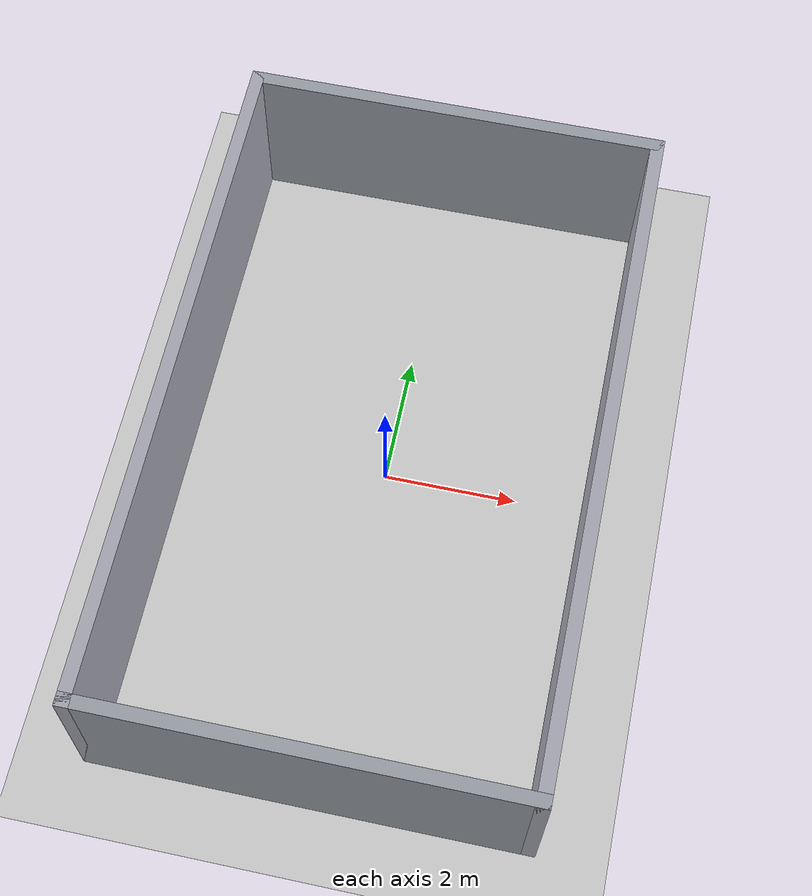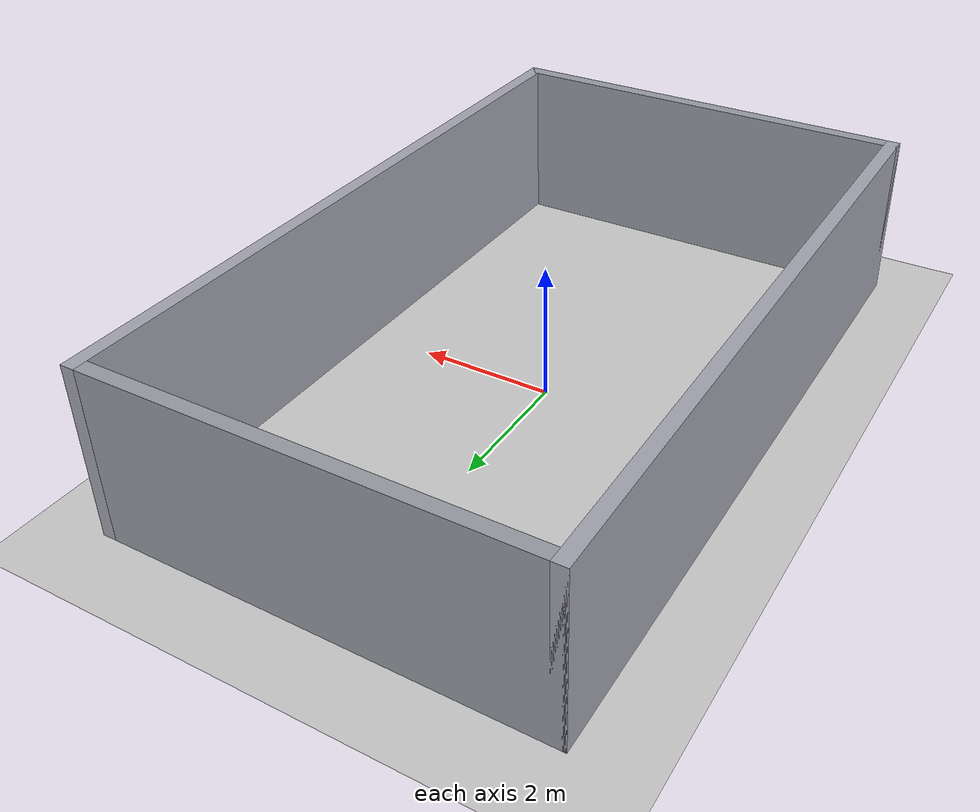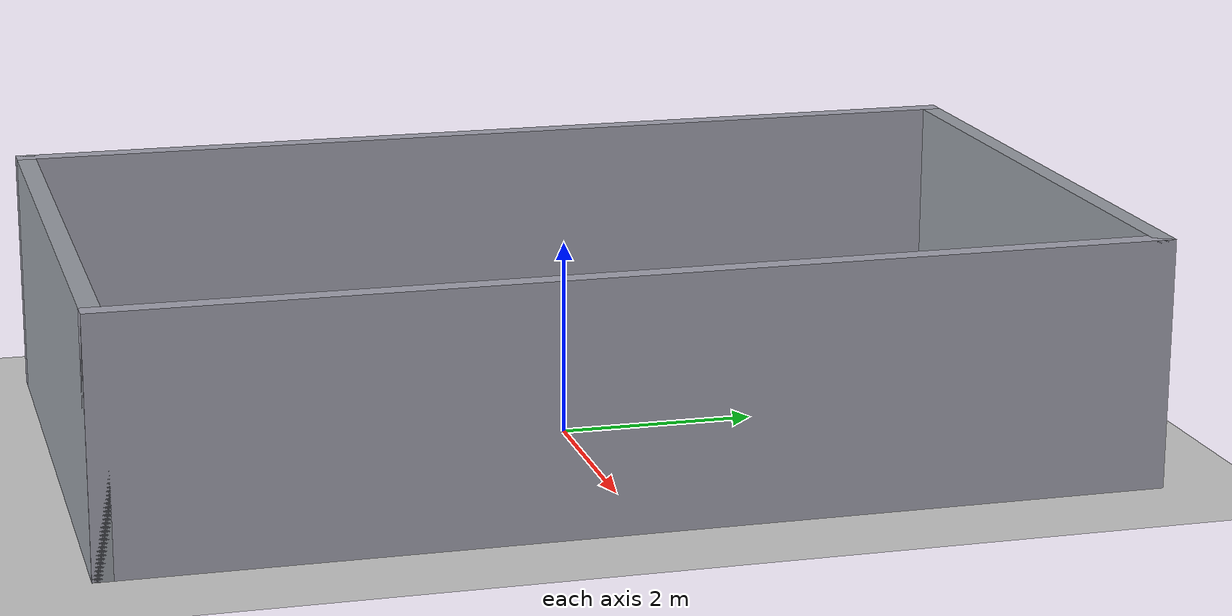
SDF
<?xml version="1.0" ?>
<sdf version="1.6">
  <world name="warehouse_semantic">

    <!-- Standard lighting -->
    <include>
      <uri>model://sun</uri>
    </include>

    <!-- Infinite ground (collision + visual); warehouse walls provide boundaries -->
    <include>
      <uri>model://ground_plane</uri>
    </include>

    <!-- Physics: stable real-time factor for simulation -->
    <physics type="ode">
      <real_time_factor>1.0</real_time_factor>
      <max_step_size>0.001</max_step_size>
    </physics>

    <!-- Scene ambient (subtle, works with sun) -->
    <scene>
      <ambient>0.4 0.4 0.4 1</ambient>
      <background>0.7 0.75 0.8 1</background>
    </scene>

    <!--
      Walls: static boxes, thickness 0.2 m, height 2.5 m (good for lidar / collision).
      Inner clearance: X in [-3, 3], Y in [-5, 5] (6 m × 10 m).
    -->
    <model name="wall_east">
      <static>true</static>
      <pose>3.1 0 1.25 0 0 0</pose>
      <link name="link">
        <collision name="collision">
          <geometry>
            <box>
              <size>0.2 10.4 2.5</size>
            </box>
          </geometry>
        </collision>
        <visual name="visual">
          <geometry>
            <box>
              <size>0.2 10.4 2.5</size>
            </box>
          </geometry>
          <material>
            <ambient>0.55 0.55 0.58 1</ambient>
            <diffuse>0.65 0.65 0.7 1</diffuse>
          </material>
        </visual>
      </link>
    </model>

    <model name="wall_west">
      <static>true</static>
      <pose>-3.1 0 1.25 0 0 0</pose>
      <link name="link">
        <collision name="collision">
          <geometry>
            <box>
              <size>0.2 10.4 2.5</size>
            </box>
          </geometry>
        </collision>
        <visual name="visual">
          <geometry>
            <box>
              <size>0.2 10.4 2.5</size>
            </box>
          </geometry>
          <material>
            <ambient>0.55 0.55 0.58 1</ambient>
            <diffuse>0.65 0.65 0.7 1</diffuse>
          </material>
        </visual>
      </link>
    </model>

    <model name="wall_north">
      <static>true</static>
      <pose>0 5.1 1.25 0 0 0</pose>
      <link name="link">
        <collision name="collision">
          <geometry>
            <box>
              <size>6.4 0.2 2.5</size>
            </box>
          </geometry>
        </collision>
        <visual name="visual">
          <geometry>
            <box>
              <size>6.4 0.2 2.5</size>
            </box>
          </geometry>
          <material>
            <ambient>0.5 0.52 0.55 1</ambient>
            <diffuse>0.6 0.62 0.65 1</diffuse>
          </material>
        </visual>
      </link>
    </model>

    <model name="wall_south">
      <static>true</static>
      <pose>0 -5.1 1.25 0 0 0</pose>
      <link name="link">
        <collision name="collision">
          <geometry>
            <box>
              <size>6.4 0.2 2.5</size>
            </box>
          </geometry>
        </collision>
        <visual name="visual">
          <geometry>
            <box>
              <size>6.4 0.2 2.5</size>
            </box>
          </geometry>
          <material>
            <ambient>0.5 0.52 0.55 1</ambient>
            <diffuse>0.6 0.62 0.65 1</diffuse>
          </material>
        </visual>
      </link>
    </model>

  </world>
</sdf>
